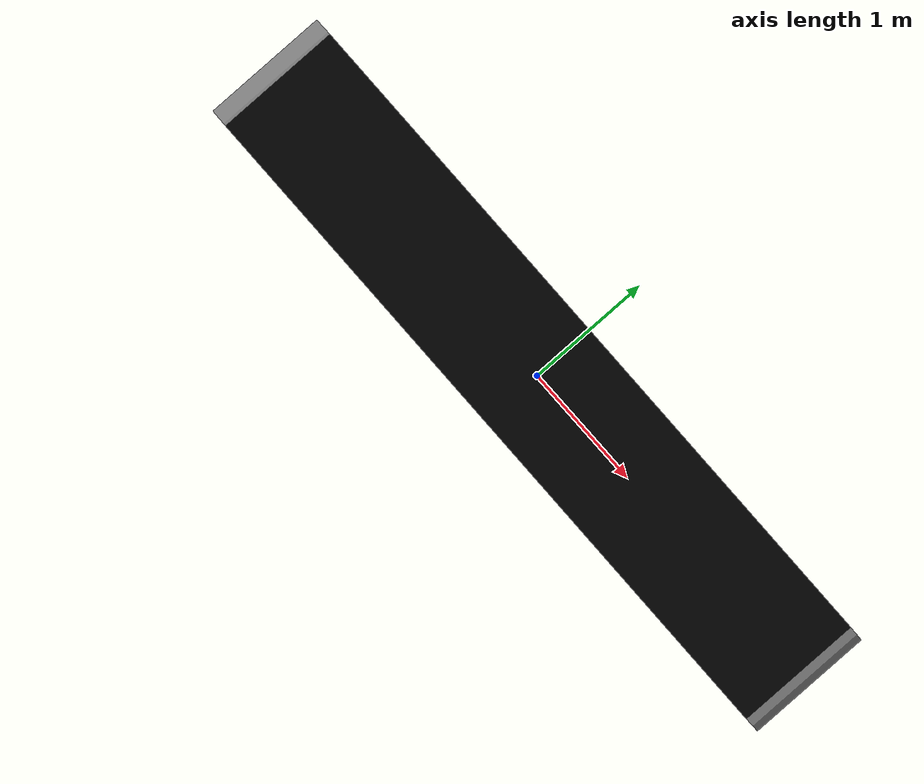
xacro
<?xml version="1.0"?>
<robot  name="conveyor_belt" xmlns:xacro="http://ros.org/wiki/xacro">

  <xacro:macro name="body_color">
    <visual>
      <material>
        <ambient>0.501960784313725 0.501960784313725 0.501960784313725 1</ambient>
        <diffuse>0.501960784313725 0.501960784313725 0.501960784313725 1</diffuse>
        <specular>0.1 0.1 0.1 1</specular>
        <emissive>0 0 0 0</emissive>
      </material>
    </visual>
  </xacro:macro>
  <xacro:macro name="belt_color">
    <visual>
      <material>
        <ambient>0 0 0 1</ambient>
        <diffuse>0 0 0  1</diffuse>
        <specular>0.1 0.1 0.1 1</specular>
        <emissive>0 0 0 0</emissive>
      </material>
    </visual>
  </xacro:macro>

  <link
    name="base_link">
    <inertial>
      <origin
        xyz="1.15972439062802E-17 -0.0273162100367329 1.02144955943776E-17"
        rpy="0 0 0" />
      <mass
        value="2430.68583470577" />
      <inertia
        ixx="431.198140853202"
        ixy="2.18658245479853E-14"
        ixz="4.38017677684144E-14"
        iyy="7514.31711977665"
        iyz="3.72364768160213E-15"
        izz="7545.20095484556" />
    </inertial>
    <visual>
      <origin
        xyz="0 0 0"
        rpy="0 0 0" />
      <geometry>
        <mesh
          filename="package://conveyor_belt/meshes/base_link.STL" />
      </geometry>
      <material
        name="">
        <color
          rgba="0.501960784313725 0.501960784313725 0.501960784313725 1" />
      </material>
    </visual>
    <collision>
      <origin
        xyz="0 0 0"
        rpy="0 0 0" />
      <geometry>
        <mesh
          filename="package://conveyor_belt/meshes/base_link.STL" />
      </geometry>
    </collision>
  </link>
  <link
    name="belt_link">
    <inertial>
      <origin
        xyz="2.84 0.00499999999999995 2.76334119905601E-17"
        rpy="0 0 0" />
      <mass
        value="56.8" />
      <inertia
        ixx="4.73380666666667"
        ixy="3.71142749699624E-34"
        ixz="2.20830761084774E-15"
        iyy="157.442026666667"
        iyz="2.30486925841449E-19"
        izz="152.709166666667" />
    </inertial>
    <visual>
      <origin
        xyz="0 0 0"
        rpy="0 0 0" />
      <geometry>
        <mesh
          filename="package://conveyor_belt/meshes/belt_link.STL" />
      </geometry>
      <material
        name="">
        <color
          rgba="0 0 0 1" />
      </material>
    </visual>
    <collision>
      <origin
        xyz="0 0 0"
        rpy="0 0 0" />
      <geometry>
        <mesh
          filename="package://conveyor_belt/meshes/belt_link.STL" />
      </geometry>
    </collision>
  </link>
  <joint
    name="belt_joint"
    type="prismatic">
    <origin
      xyz="-2.83 0 0.3"
      rpy="1.5708 0 0" />
    <parent
      link="base_link" />
    <child
      link="belt_link" />
    <axis
      xyz="-1 0 0" />
    <limit
      lower="0"
      upper="0"
      effort="0"
      velocity="0" />
  </joint>

<!-- Gazebo Colors -->
  <gazebo reference="base_link">
    <xacro:body_color />
  </gazebo>
  <gazebo reference="belt_link">
    <xacro:belt_color />
  </gazebo>

<!-- Custom Gazebo Plugin for Conveyor Belt  -->
  <gazebo>
  <plugin filename="libconveyor_belt_plugin.so" name="conveyor_belt_plugin">
        <ros>
          <namespace></namespace>
        </ros>
        <max_velocity>0.2</max_velocity>
        <publish_rate>10</publish_rate>
  </plugin>
  </gazebo>

</robot>
